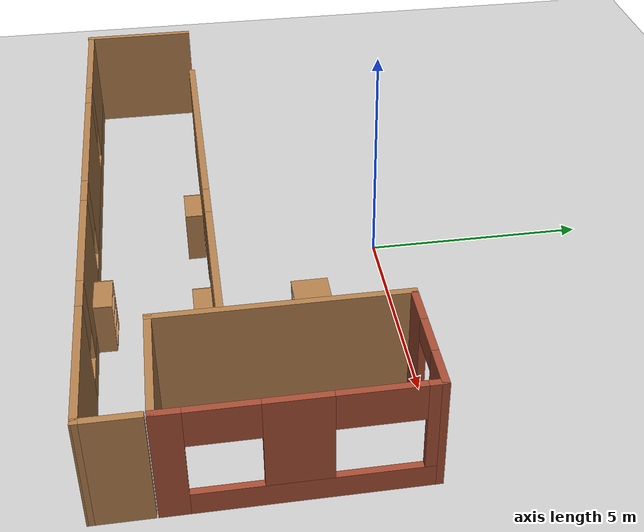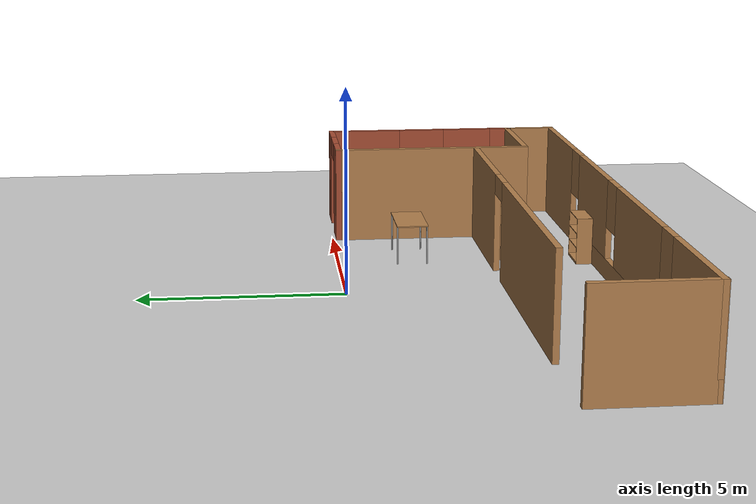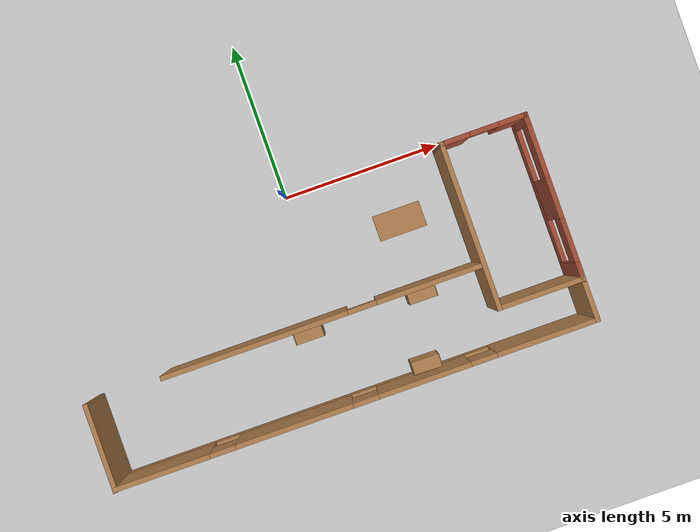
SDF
<sdf version="1.6">
 <world name="default">
  <model name="ground_plane">
   <static>1</static>
   <link name="link">
    <collision name="collision">
     <geometry><plane><normal>0 0 1</normal><size>100 100</size></plane></geometry>
     <surface>
      <contact><collide_bitmask>65535</collide_bitmask></contact>
      <friction><ode><mu>100</mu><mu2>50</mu2></ode></friction>
     </surface>
    </collision>
    <visual name="visual">
     <cast_shadows>0</cast_shadows>
     <geometry><plane><normal>0 0 1</normal><size>100 100</size></plane></geometry>
     <material>
      <script><uri>file://media/materials/scripts/gazebo.material</uri><name>Gazebo/Grey</name></script>
     </material>
    </visual>
   </link>
  </model>
  <model name="turtlebot3_house">
   <pose>0.006915 0.007382 0 0 -0 0</pose>
   <link name="Wall_106">
    <pose>6.2 -0.175 0 0 -0 0</pose>
    <visual name="Wall_106_Visual_1">
     <pose>0.922235 0 1.25 0 -0 0</pose>
     <geometry><box><size>0.905529 0.15 2.5</size></box></geometry>
     <material>
      <script><uri>file://media/materials/scripts/gazebo.material</uri><name>Gazebo/Bricks</name></script>
      <ambient>1 1 1 1</ambient>
      <diffuse>1 1 1 1</diffuse>
      <specular>0.2 0.2 0.2 1</specular>
      <emissive>0 0 0 1</emissive>
     </material>
    </visual>
    <visual name="Wall_106_Visual_2">
     <pose>0.019471 0 2.25 0 -0 0</pose>
     <geometry><box><size>0.9 0.15 0.5</size></box></geometry>
     <material>
      <script><uri>file://media/materials/scripts/gazebo.material</uri><name>Gazebo/Bricks</name></script>
      <ambient>1 1 1 1</ambient>
      <diffuse>1 1 1 1</diffuse>
      <specular>0.2 0.2 0.2 1</specular>
      <emissive>0 0 0 1</emissive>
     </material>
    </visual>
    <visual name="Wall_106_Visual_0">
     <pose>-0.902765 0 1.25 0 -0 0</pose>
     <geometry><box><size>0.944471 0.15 2.5</size></box></geometry>
     <material>
      <script><uri>file://media/materials/scripts/gazebo.material</uri><name>Gazebo/Bricks</name></script>
      <ambient>1 1 1 1</ambient>
      <diffuse>1 1 1 1</diffuse>
      <specular>0.2 0.2 0.2 1</specular>
      <emissive>0 0 0 1</emissive>
     </material>
    </visual>
    <collision name="Wall_106_Collision_1">
     <pose>0.922235 0 1.25 0 -0 0</pose>
     <geometry><box><size>0.905529 0.15 2.5</size></box></geometry>
     <surface>
      <friction>
       <ode><mu>1</mu><mu2>1</mu2><fdir1>0 0 0</fdir1><slip1>0</slip1><slip2>0</slip2></ode>
       <torsional>
        <coefficient>1</coefficient>
        <patch_radius>0</patch_radius>
        <surface_radius>0</surface_radius>
        <use_patch_radius>1</use_patch_radius>
        <ode><slip>0</slip></ode>
       </torsional>
      </friction>
      <bounce><restitution_coefficient>0</restitution_coefficient><threshold>1e+06</threshold></bounce>
      <contact>
       <collide_without_contact>0</collide_without_contact>
       <collide_without_contact_bitmask>1</collide_without_contact_bitmask>
       <collide_bitmask>1</collide_bitmask>
       <ode>
        <soft_cfm>0</soft_cfm>
        <soft_erp>0.2</soft_erp>
        <kp>1e+13</kp>
        <kd>1</kd>
        <max_vel>0.01</max_vel>
        <min_depth>0</min_depth>
       </ode>
       <bullet>
        <split_impulse>1</split_impulse>
        <split_impulse_penetration_threshold>-0.01</split_impulse_penetration_threshold>
        <soft_cfm>0</soft_cfm>
        <soft_erp>0.2</soft_erp>
        <kp>1e+13</kp>
        <kd>1</kd>
       </bullet>
      </contact>
     </surface>
    </collision>
    <collision name="Wall_106_Collision_0">
     <pose>-0.902765 0 1.25 0 -0 0</pose>
     <geometry><box><size>0.944471 0.15 2.5</size></box></geometry>
     <surface>
      <friction>
       <ode><mu>1</mu><mu2>1</mu2><fdir1>0 0 0</fdir1><slip1>0</slip1><slip2>0</slip2></ode>
       <torsional>
        <coefficient>1</coefficient>
        <patch_radius>0</patch_radius>
        <surface_radius>0</surface_radius>
        <use_patch_radius>1</use_patch_radius>
        <ode><slip>0</slip></ode>
       </torsional>
      </friction>
      <bounce><restitution_coefficient>0</restitution_coefficient><threshold>1e+06</threshold></bounce>
      <contact>
       <collide_without_contact>0</collide_without_contact>
       <collide_without_contact_bitmask>1</collide_without_contact_bitmask>
       <collide_bitmask>1</collide_bitmask>
       <ode>
        <soft_cfm>0</soft_cfm>
        <soft_erp>0.2</soft_erp>
        <kp>1e+13</kp>
        <kd>1</kd>
        <max_vel>0.01</max_vel>
        <min_depth>0</min_depth>
       </ode>
       <bullet>
        <split_impulse>1</split_impulse>
        <split_impulse_penetration_threshold>-0.01</split_impulse_penetration_threshold>
        <soft_cfm>0</soft_cfm>
        <soft_erp>0.2</soft_erp>
        <kp>1e+13</kp>
        <kd>1</kd>
       </bullet>
      </contact>
     </surface>
    </collision>
    <collision name="Wall_106_Collision_2">
     <pose>0.019471 0 2.25 0 -0 0</pose>
     <geometry><box><size>0.9 0.15 0.5</size></box></geometry>
     <surface>
      <friction>
       <ode><mu>1</mu><mu2>1</mu2><fdir1>0 0 0</fdir1><slip1>0</slip1><slip2>0</slip2></ode>
       <torsional>
        <coefficient>1</coefficient>
        <patch_radius>0</patch_radius>
        <surface_radius>0</surface_radius>
        <use_patch_radius>1</use_patch_radius>
        <ode><slip>0</slip></ode>
       </torsional>
      </friction>
      <bounce><restitution_coefficient>0</restitution_coefficient><threshold>1e+06</threshold></bounce>
      <contact>
       <collide_without_contact>0</collide_without_contact>
       <collide_without_contact_bitmask>1</collide_without_contact_bitmask>
       <collide_bitmask>1</collide_bitmask>
       <ode>
        <soft_cfm>0</soft_cfm>
        <soft_erp>0.2</soft_erp>
        <kp>1e+13</kp>
        <kd>1</kd>
        <max_vel>0.01</max_vel>
        <min_depth>0</min_depth>
       </ode>
       <bullet>
        <split_impulse>1</split_impulse>
        <split_impulse_penetration_threshold>-0.01</split_impulse_penetration_threshold>
        <soft_cfm>0</soft_cfm>
        <soft_erp>0.2</soft_erp>
        <kp>1e+13</kp>
        <kd>1</kd>
       </bullet>
      </contact>
     </surface>
    </collision>
   </link>
   <link name="Wall_93">
    <pose>4.9 -2.725 0 0 0 -1.5708</pose>
    <visual name="Wall_93_Visual">
     <pose>0 0 1.25 0 -0 0</pose>
     <geometry><box><size>5.25 0.15 2.5</size></box></geometry>
     <material>
      <script><uri>file://media/materials/scripts/gazebo.material</uri><name>Gazebo/Wood</name></script>
      <ambient>1 1 1 1</ambient>
      <diffuse>1 1 1 1</diffuse>
      <specular>0.2 0.2 0.2 1</specular>
      <emissive>0 0 0 1</emissive>
     </material>
    </visual>
    <collision name="Wall_93_Collision">
     <pose>0 0 1.25 0 -0 0</pose>
     <geometry><box><size>5.25 0.15 2.5</size></box></geometry>
     <surface>
      <friction>
       <ode><mu>1</mu><mu2>1</mu2><fdir1>0 0 0</fdir1><slip1>0</slip1><slip2>0</slip2></ode>
       <torsional>
        <coefficient>1</coefficient>
        <patch_radius>0</patch_radius>
        <surface_radius>0</surface_radius>
        <use_patch_radius>1</use_patch_radius>
        <ode><slip>0</slip></ode>
       </torsional>
      </friction>
      <bounce><restitution_coefficient>0</restitution_coefficient><threshold>1e+06</threshold></bounce>
      <contact>
       <collide_without_contact>0</collide_without_contact>
       <collide_without_contact_bitmask>1</collide_without_contact_bitmask>
       <collide_bitmask>1</collide_bitmask>
       <ode>
        <soft_cfm>0</soft_cfm>
        <soft_erp>0.2</soft_erp>
        <kp>1e+13</kp>
        <kd>1</kd>
        <max_vel>0.01</max_vel>
        <min_depth>0</min_depth>
       </ode>
       <bullet>
        <split_impulse>1</split_impulse>
        <split_impulse_penetration_threshold>-0.01</split_impulse_penetration_threshold>
        <soft_cfm>0</soft_cfm>
        <soft_erp>0.2</soft_erp>
        <kp>1e+13</kp>
        <kd>1</kd>
       </bullet>
      </contact>
     </surface>
    </collision>
   </link>
   <link name="Wall_94">
    <pose>6.2 -5.275 0 0 -0 0</pose>
    <visual name="Wall_94_Visual">
     <pose>0 0 1.25 0 -0 0</pose>
     <geometry><box><size>2.75 0.15 2.5</size></box></geometry>
     <material>
      <script><uri>file://media/materials/scripts/gazebo.material</uri><name>Gazebo/Wood</name></script>
      <ambient>1 1 1 1</ambient>
      <diffuse>1 1 1 1</diffuse>
      <specular>0.2 0.2 0.2 1</specular>
      <emissive>0 0 0 1</emissive>
     </material>
    </visual>
    <collision name="Wall_94_Collision">
     <pose>0 0 1.25 0 -0 0</pose>
     <geometry><box><size>2.75 0.15 2.5</size></box></geometry>
     <surface>
      <friction>
       <ode><mu>1</mu><mu2>1</mu2><fdir1>0 0 0</fdir1><slip1>0</slip1><slip2>0</slip2></ode>
       <torsional>
        <coefficient>1</coefficient>
        <patch_radius>0</patch_radius>
        <surface_radius>0</surface_radius>
        <use_patch_radius>1</use_patch_radius>
        <ode><slip>0</slip></ode>
       </torsional>
      </friction>
      <bounce><restitution_coefficient>0</restitution_coefficient><threshold>1e+06</threshold></bounce>
      <contact>
       <collide_without_contact>0</collide_without_contact>
       <collide_without_contact_bitmask>1</collide_without_contact_bitmask>
       <collide_bitmask>1</collide_bitmask>
       <ode>
        <soft_cfm>0</soft_cfm>
        <soft_erp>0.2</soft_erp>
        <kp>1e+13</kp>
        <kd>1</kd>
        <max_vel>0.01</max_vel>
        <min_depth>0</min_depth>
       </ode>
       <bullet>
        <split_impulse>1</split_impulse>
        <split_impulse_penetration_threshold>-0.01</split_impulse_penetration_threshold>
        <soft_cfm>0</soft_cfm>
        <soft_erp>0.2</soft_erp>
        <kp>1e+13</kp>
        <kd>1</kd>
       </bullet>
      </contact>
     </surface>
    </collision>
   </link>
   <link name="Wall_95">
    <pose>7.5 -2.725 0 0 -0 1.5708</pose>
    <visual name="Wall_95_Visual_1">
     <pose>0.295715 0 0.25 0 -0 0</pose>
     <geometry><box><size>4.65857 0.15 0.5</size></box></geometry>
     <material>
      <script><uri>file://media/materials/scripts/gazebo.material</uri><name>Gazebo/Bricks</name></script>
      <ambient>1 1 1 1</ambient>
      <diffuse>1 1 1 1</diffuse>
      <specular>0.2 0.2 0.2 1</specular>
      <emissive>0 0 0 1</emissive>
     </material>
    </visual>
    <visual name="Wall_95_Visual_2">
     <pose>-0.036959 0 1.5 0 -0 0</pose>
     <geometry><box><size>1.27522 0.15 2</size></box></geometry>
     <material>
      <script><uri>file://media/materials/scripts/gazebo.material</uri><name>Gazebo/Bricks</name></script>
      <ambient>1 1 1 1</ambient>
      <diffuse>1 1 1 1</diffuse>
      <specular>0.2 0.2 0.2 1</specular>
      <emissive>0 0 0 1</emissive>
     </material>
    </visual>
    <visual name="Wall_95_Visual_3">
     <pose>2.43783 0 1.5 0 -0 0</pose>
     <geometry><box><size>0.374348 0.15 2</size></box></geometry>
     <material>
      <script><uri>file://media/materials/scripts/gazebo.material</uri><name>Gazebo/Bricks</name></script>
      <ambient>1 1 1 1</ambient>
      <diffuse>1 1 1 1</diffuse>
      <specular>0.2 0.2 0.2 1</specular>
      <emissive>0 0 0 1</emissive>
     </material>
    </visual>
    <visual name="Wall_95_Visual_5">
     <pose>1.42565 0 2.1 0 -0 0</pose>
     <geometry><box><size>1.65 0.15 0.8</size></box></geometry>
     <material>
      <script><uri>file://media/materials/scripts/gazebo.material</uri><name>Gazebo/Bricks</name></script>
      <ambient>1 1 1 1</ambient>
      <diffuse>1 1 1 1</diffuse>
      <specular>0.2 0.2 0.2 1</specular>
      <emissive>0 0 0 1</emissive>
     </material>
    </visual>
    <visual name="Wall_95_Visual_4">
     <pose>-1.35407 0 2.1 0 -0 0</pose>
     <geometry><box><size>1.359 0.15 0.8</size></box></geometry>
     <material>
      <script><uri>file://media/materials/scripts/gazebo.material</uri><name>Gazebo/Bricks</name></script>
      <ambient>1 1 1 1</ambient>
      <diffuse>1 1 1 1</diffuse>
      <specular>0.2 0.2 0.2 1</specular>
      <emissive>0 0 0 1</emissive>
     </material>
    </visual>
    <visual name="Wall_95_Visual_0">
     <pose>-2.32929 0 1.25 0 -0 0</pose>
     <geometry><box><size>0.591431 0.15 2.5</size></box></geometry>
     <material>
      <script><uri>file://media/materials/scripts/gazebo.material</uri><name>Gazebo/Bricks</name></script>
      <ambient>1 1 1 1</ambient>
      <diffuse>1 1 1 1</diffuse>
      <specular>0.2 0.2 0.2 1</specular>
      <emissive>0 0 0 1</emissive>
     </material>
    </visual>
    <collision name="Wall_95_Collision_2">
     <pose>-0.036959 0 1.5 0 -0 0</pose>
     <geometry><box><size>1.27522 0.15 2</size></box></geometry>
     <surface>
      <friction>
       <ode><mu>1</mu><mu2>1</mu2><fdir1>0 0 0</fdir1><slip1>0</slip1><slip2>0</slip2></ode>
       <torsional>
        <coefficient>1</coefficient>
        <patch_radius>0</patch_radius>
        <surface_radius>0</surface_radius>
        <use_patch_radius>1</use_patch_radius>
        <ode><slip>0</slip></ode>
       </torsional>
      </friction>
      <bounce><restitution_coefficient>0</restitution_coefficient><threshold>1e+06</threshold></bounce>
      <contact>
       <collide_without_contact>0</collide_without_contact>
       <collide_without_contact_bitmask>1</collide_without_contact_bitmask>
       <collide_bitmask>1</collide_bitmask>
       <ode>
        <soft_cfm>0</soft_cfm>
        <soft_erp>0.2</soft_erp>
        <kp>1e+13</kp>
        <kd>1</kd>
        <max_vel>0.01</max_vel>
        <min_depth>0</min_depth>
       </ode>
       <bullet>
        <split_impulse>1</split_impulse>
        <split_impulse_penetration_threshold>-0.01</split_impulse_penetration_threshold>
        <soft_cfm>0</soft_cfm>
        <soft_erp>0.2</soft_erp>
        <kp>1e+13</kp>
        <kd>1</kd>
       </bullet>
      </contact>
     </surface>
    </collision>
    <collision name="Wall_95_Collision_3">
     <pose>2.43783 0 1.5 0 -0 0</pose>
     <geometry><box><size>0.374348 0.15 2</size></box></geometry>
     <surface>
      <friction>
       <ode><mu>1</mu><mu2>1</mu2><fdir1>0 0 0</fdir1><slip1>0</slip1><slip2>0</slip2></ode>
       <torsional>
        <coefficient>1</coefficient>
        <patch_radius>0</patch_radius>
        <surface_radius>0</surface_radius>
        <use_patch_radius>1</use_patch_radius>
        <ode><slip>0</slip></ode>
       </torsional>
      </friction>
      <bounce><restitution_coefficient>0</restitution_coefficient><threshold>1e+06</threshold></bounce>
      <contact>
       <collide_without_contact>0</collide_without_contact>
       <collide_without_contact_bitmask>1</collide_without_contact_bitmask>
       <collide_bitmask>1</collide_bitmask>
       <ode>
        <soft_cfm>0</soft_cfm>
        <soft_erp>0.2</soft_erp>
        <kp>1e+13</kp>
        <kd>1</kd>
        <max_vel>0.01</max_vel>
        <min_depth>0</min_depth>
       </ode>
       <bullet>
        <split_impulse>1</split_impulse>
        <split_impulse_penetration_threshold>-0.01</split_impulse_penetration_threshold>
        <soft_cfm>0</soft_cfm>
        <soft_erp>0.2</soft_erp>
        <kp>1e+13</kp>
        <kd>1</kd>
       </bullet>
      </contact>
     </surface>
    </collision>
    <collision name="Wall_95_Collision_5">
     <pose>1.42565 0 2.1 0 -0 0</pose>
     <geometry><box><size>1.65 0.15 0.8</size></box></geometry>
     <surface>
      <friction>
       <ode><mu>1</mu><mu2>1</mu2><fdir1>0 0 0</fdir1><slip1>0</slip1><slip2>0</slip2></ode>
       <torsional>
        <coefficient>1</coefficient>
        <patch_radius>0</patch_radius>
        <surface_radius>0</surface_radius>
        <use_patch_radius>1</use_patch_radius>
        <ode><slip>0</slip></ode>
       </torsional>
      </friction>
      <bounce><restitution_coefficient>0</restitution_coefficient><threshold>1e+06</threshold></bounce>
      <contact>
       <collide_without_contact>0</collide_without_contact>
       <collide_without_contact_bitmask>1</collide_without_contact_bitmask>
       <collide_bitmask>1</collide_bitmask>
       <ode>
        <soft_cfm>0</soft_cfm>
        <soft_erp>0.2</soft_erp>
        <kp>1e+13</kp>
        <kd>1</kd>
        <max_vel>0.01</max_vel>
        <min_depth>0</min_depth>
       </ode>
       <bullet>
        <split_impulse>1</split_impulse>
        <split_impulse_penetration_threshold>-0.01</split_impulse_penetration_threshold>
        <soft_cfm>0</soft_cfm>
        <soft_erp>0.2</soft_erp>
        <kp>1e+13</kp>
        <kd>1</kd>
       </bullet>
      </contact>
     </surface>
    </collision>
    <collision name="Wall_95_Collision_0">
     <pose>-2.32929 0 1.25 0 -0 0</pose>
     <geometry><box><size>0.591431 0.15 2.5</size></box></geometry>
     <surface>
      <friction>
       <ode><mu>1</mu><mu2>1</mu2><fdir1>0 0 0</fdir1><slip1>0</slip1><slip2>0</slip2></ode>
       <torsional>
        <coefficient>1</coefficient>
        <patch_radius>0</patch_radius>
        <surface_radius>0</surface_radius>
        <use_patch_radius>1</use_patch_radius>
        <ode><slip>0</slip></ode>
       </torsional>
      </friction>
      <bounce><restitution_coefficient>0</restitution_coefficient><threshold>1e+06</threshold></bounce>
      <contact>
       <collide_without_contact>0</collide_without_contact>
       <collide_without_contact_bitmask>1</collide_without_contact_bitmask>
       <collide_bitmask>1</collide_bitmask>
       <ode>
        <soft_cfm>0</soft_cfm>
        <soft_erp>0.2</soft_erp>
        <kp>1e+13</kp>
        <kd>1</kd>
        <max_vel>0.01</max_vel>
        <min_depth>0</min_depth>
       </ode>
       <bullet>
        <split_impulse>1</split_impulse>
        <split_impulse_penetration_threshold>-0.01</split_impulse_penetration_threshold>
        <soft_cfm>0</soft_cfm>
        <soft_erp>0.2</soft_erp>
        <kp>1e+13</kp>
        <kd>1</kd>
       </bullet>
      </contact>
     </surface>
    </collision>
    <collision name="Wall_95_Collision_1">
     <pose>0.295715 0 0.25 0 -0 0</pose>
     <geometry><box><size>4.65857 0.15 0.5</size></box></geometry>
     <surface>
      <friction>
       <ode><mu>1</mu><mu2>1</mu2><fdir1>0 0 0</fdir1><slip1>0</slip1><slip2>0</slip2></ode>
       <torsional>
        <coefficient>1</coefficient>
        <patch_radius>0</patch_radius>
        <surface_radius>0</surface_radius>
        <use_patch_radius>1</use_patch_radius>
        <ode><slip>0</slip></ode>
       </torsional>
      </friction>
      <bounce><restitution_coefficient>0</restitution_coefficient><threshold>1e+06</threshold></bounce>
      <contact>
       <collide_without_contact>0</collide_without_contact>
       <collide_without_contact_bitmask>1</collide_without_contact_bitmask>
       <collide_bitmask>1</collide_bitmask>
       <ode>
        <soft_cfm>0</soft_cfm>
        <soft_erp>0.2</soft_erp>
        <kp>1e+13</kp>
        <kd>1</kd>
        <max_vel>0.01</max_vel>
        <min_depth>0</min_depth>
       </ode>
       <bullet>
        <split_impulse>1</split_impulse>
        <split_impulse_penetration_threshold>-0.01</split_impulse_penetration_threshold>
        <soft_cfm>0</soft_cfm>
        <soft_erp>0.2</soft_erp>
        <kp>1e+13</kp>
        <kd>1</kd>
       </bullet>
      </contact>
     </surface>
    </collision>
    <collision name="Wall_95_Collision_4">
     <pose>-1.35407 0 2.1 0 -0 0</pose>
     <geometry><box><size>1.359 0.15 0.8</size></box></geometry>
     <surface>
      <friction>
       <ode><mu>1</mu><mu2>1</mu2><fdir1>0 0 0</fdir1><slip1>0</slip1><slip2>0</slip2></ode>
       <torsional>
        <coefficient>1</coefficient>
        <patch_radius>0</patch_radius>
        <surface_radius>0</surface_radius>
        <use_patch_radius>1</use_patch_radius>
        <ode><slip>0</slip></ode>
       </torsional>
      </friction>
      <bounce><restitution_coefficient>0</restitution_coefficient><threshold>1e+06</threshold></bounce>
      <contact>
       <collide_without_contact>0</collide_without_contact>
       <collide_without_contact_bitmask>1</collide_without_contact_bitmask>
       <collide_bitmask>1</collide_bitmask>
       <ode>
        <soft_cfm>0</soft_cfm>
        <soft_erp>0.2</soft_erp>
        <kp>1e+13</kp>
        <kd>1</kd>
        <max_vel>0.01</max_vel>
        <min_depth>0</min_depth>
       </ode>
       <bullet>
        <split_impulse>1</split_impulse>
        <split_impulse_penetration_threshold>-0.01</split_impulse_penetration_threshold>
        <soft_cfm>0</soft_cfm>
        <soft_erp>0.2</soft_erp>
        <kp>1e+13</kp>
        <kd>1</kd>
       </bullet>
      </contact>
     </surface>
    </collision>
   </link>
   <static>1</static>
  </model>
  <model name="test">
   <pose>-0.158987 -3.9109 0 0 -0 0</pose>
   <link name="Wall_1">
    <visual name="Wall_1_Visual_0">
     <pose>-2.08639 0 1.25 0 -0 0</pose>
     <geometry><box><size>5.82721 0.15 2.5</size></box></geometry>
     <material>
      <script><uri>file://media/materials/scripts/gazebo.material</uri><name>Gazebo/Wood</name></script>
      <ambient>1 1 1 1</ambient>
     </material>
     <meta><layer>0</layer></meta>
    </visual>
    <collision name="Wall_1_Collision_0">
     <geometry><box><size>5.82721 0.15 2.5</size></box></geometry>
     <pose>-2.08639 0 1.25 0 -0 0</pose>
    </collision>
    <visual name="Wall_1_Visual_1">
     <pose>3.36361 0 1.25 0 -0 0</pose>
     <geometry><box><size>3.27278 0.15 2.5</size></box></geometry>
     <material>
      <script><uri>file://media/materials/scripts/gazebo.material</uri><name>Gazebo/Wood</name></script>
      <ambient>1 1 1 1</ambient>
     </material>
     <meta><layer>0</layer></meta>
    </visual>
    <collision name="Wall_1_Collision_1">
     <geometry><box><size>3.27278 0.15 2.5</size></box></geometry>
     <pose>3.36361 0 1.25 0 -0 0</pose>
    </collision>
    <visual name="Wall_1_Visual_2">
     <pose>1.27721 0 2.25 0 -0 0</pose>
     <geometry><box><size>0.9 0.15 0.5</size></box></geometry>
     <material>
      <script><uri>file://media/materials/scripts/gazebo.material</uri><name>Gazebo/Wood</name></script>
      <ambient>1 1 1 1</ambient>
     </material>
     <meta><layer>0</layer></meta>
    </visual>
    <collision name="Wall_1_Collision_2">
     <geometry><box><size>0.9 0.15 0.5</size></box></geometry>
     <pose>1.27721 0 2.25 0 -0 0</pose>
    </collision>
   </link>
   <static>1</static>
  </model>
  <model name="test2">
   <pose>0.00355 -5.2502 0 0 -0 0</pose>
   <link name="Wall_10">
    <collision name="Wall_10_Collision">
     <geometry><box><size>1.25 0.15 2.5</size></box></geometry>
     <pose>0 0 1.25 0 -0 0</pose>
    </collision>
    <visual name="Wall_10_Visual">
     <pose>0 0 1.25 0 -0 0</pose>
     <geometry><box><size>1.25 0.15 2.5</size></box></geometry>
     <material>
      <script><uri>file://media/materials/scripts/gazebo.material</uri><name>Gazebo/Wood</name></script>
      <ambient>1 1 1 1</ambient>
     </material>
     <meta><layer>0</layer></meta>
    </visual>
    <pose>7.50104 -0.74334 0 0 -0 1.5708</pose>
   </link>
   <link name="Wall_6">
    <pose>0 -1.28906 0 0 -0 3.14102</pose>
    <visual name="Wall_6_Visual_0">
     <pose>-5.98072 0 1.25 0 -0 0</pose>
     <geometry><box><size>3.19069 0.15 2.5</size></box></geometry>
     <material>
      <script><uri>file://media/materials/scripts/gazebo.material</uri><name>Gazebo/Wood</name></script>
      <ambient>1 1 1 1</ambient>
     </material>
     <meta><layer>0</layer></meta>
    </visual>
    <collision name="Wall_6_Collision_0">
     <geometry><box><size>3.19069 0.15 2.5</size></box></geometry>
     <pose>-5.98072 0 1.25 0 -0 0</pose>
    </collision>
    <visual name="Wall_6_Visual_1">
     <pose>1.59535 0 0.25 0 -0 0</pose>
     <geometry><box><size>11.9614 0.15 0.5</size></box></geometry>
     <material>
      <script><uri>file://media/materials/scripts/gazebo.material</uri><name>Gazebo/Wood</name></script>
      <ambient>1 1 1 1</ambient>
     </material>
     <meta><layer>0</layer></meta>
    </visual>
    <collision name="Wall_6_Collision_1">
     <geometry><box><size>11.9614 0.15 0.5</size></box></geometry>
     <pose>1.59535 0 0.25 0 -0 0</pose>
    </collision>
    <visual name="Wall_6_Visual_2">
     <pose>-2.14508 0 1.5 0 -0 0</pose>
     <geometry><box><size>2.88059 0.15 2</size></box></geometry>
     <material>
      <script><uri>file://media/materials/scripts/gazebo.material</uri><name>Gazebo/Wood</name></script>
      <ambient>1 1 1 1</ambient>
     </material>
     <meta><layer>0</layer></meta>
    </visual>
    <collision name="Wall_6_Collision_2">
     <geometry><box><size>2.88059 0.15 2</size></box></geometry>
     <pose>-2.14508 0 1.5 0 -0 0</pose>
    </collision>
    <visual name="Wall_6_Visual_3">
     <pose>1.92326 0 1.5 0 -0 0</pose>
     <geometry><box><size>3.65609 0.15 2</size></box></geometry>
     <material>
      <script><uri>file://media/materials/scripts/gazebo.material</uri><name>Gazebo/Wood</name></script>
      <ambient>1 1 1 1</ambient>
     </material>
     <meta><layer>0</layer></meta>
    </visual>
    <collision name="Wall_6_Collision_3">
     <geometry><box><size>3.65609 0.15 2</size></box></geometry>
     <pose>1.92326 0 1.5 0 -0 0</pose>
    </collision>
    <visual name="Wall_6_Visual_4">
     <pose>6.06369 0 1.5 0 -0 0</pose>
     <geometry><box><size>3.02476 0.15 2</size></box></geometry>
     <material>
      <script><uri>file://media/materials/scripts/gazebo.material</uri><name>Gazebo/Wood</name></script>
      <ambient>1 1 1 1</ambient>
     </material>
     <meta><layer>0</layer></meta>
    </visual>
    <collision name="Wall_6_Collision_4">
     <geometry><box><size>3.02476 0.15 2</size></box></geometry>
     <pose>6.06369 0 1.5 0 -0 0</pose>
    </collision>
    <visual name="Wall_6_Visual_5">
     <pose>-3.98538 0 1.9 0 -0 0</pose>
     <geometry><box><size>0.8 0.15 1.2</size></box></geometry>
     <material>
      <script><uri>file://media/materials/scripts/gazebo.material</uri><name>Gazebo/Wood</name></script>
      <ambient>1 1 1 1</ambient>
     </material>
     <meta><layer>0</layer></meta>
    </visual>
    <collision name="Wall_6_Collision_5">
     <geometry><box><size>0.8 0.15 1.2</size></box></geometry>
     <pose>-3.98538 0 1.9 0 -0 0</pose>
    </collision>
    <visual name="Wall_6_Visual_6">
     <pose>-0.304791 0 1.9 0 -0 0</pose>
     <geometry><box><size>0.8 0.15 1.2</size></box></geometry>
     <material>
      <script><uri>file://media/materials/scripts/gazebo.material</uri><name>Gazebo/Wood</name></script>
      <ambient>1 1 1 1</ambient>
     </material>
     <meta><layer>0</layer></meta>
    </visual>
    <collision name="Wall_6_Collision_6">
     <geometry><box><size>0.8 0.15 1.2</size></box></geometry>
     <pose>-0.304791 0 1.9 0 -0 0</pose>
    </collision>
    <visual name="Wall_6_Visual_7">
     <pose>4.1513 0 1.9 0 -0 0</pose>
     <geometry><box><size>0.8 0.15 1.2</size></box></geometry>
     <material>
      <script><uri>file://media/materials/scripts/gazebo.material</uri><name>Gazebo/Wood</name></script>
      <ambient>1 1 1 1</ambient>
     </material>
     <meta><layer>0</layer></meta>
    </visual>
    <collision name="Wall_6_Collision_7">
     <geometry><box><size>0.8 0.15 1.2</size></box></geometry>
     <pose>4.1513 0 1.9 0 -0 0</pose>
    </collision>
   </link>
   <link name="Wall_8">
    <collision name="Wall_8_Collision">
     <geometry><box><size>2.75 0.15 2.5</size></box></geometry>
     <pose>0 0 1.25 0 -0 0</pose>
    </collision>
    <visual name="Wall_8_Visual">
     <pose>0 0 1.25 0 -0 0</pose>
     <geometry><box><size>2.75 0.15 2.5</size></box></geometry>
     <material>
      <script><uri>file://media/materials/scripts/gazebo.material</uri><name>Gazebo/Wood</name></script>
      <ambient>1 1 1 1</ambient>
     </material>
     <meta><layer>0</layer></meta>
    </visual>
    <pose>-7.50104 0 0 0 -0 1.5708</pose>
   </link>
   <static>1</static>
  </model>
  <model name="table">
   <static>1</static>
   <link name="link">
    <collision name="surface">
     <pose>0 0 1 0 -0 0</pose>
     <geometry><box><size>1.5 0.8 0.03</size></box></geometry>
     <surface><friction><ode><mu>0.6</mu><mu2>0.6</mu2></ode></friction></surface>
    </collision>
    <visual name="visual1">
     <pose>0 0 1 0 -0 0</pose>
     <geometry><box><size>1.5 0.8 0.03</size></box></geometry>
     <material>
      <script><uri>file://media/materials/scripts/gazebo.material</uri><name>Gazebo/Wood</name></script>
     </material>
    </visual>
    <collision name="front_left_leg">
     <pose>0.68 0.38 0.5 0 -0 0</pose>
     <geometry><cylinder><radius>0.02</radius><length>1</length></cylinder></geometry>
    </collision>
    <visual name="front_left_leg">
     <pose>0.68 0.38 0.5 0 -0 0</pose>
     <geometry><cylinder><radius>0.02</radius><length>1</length></cylinder></geometry>
     <material>
      <script><uri>file://media/materials/scripts/gazebo.material</uri><name>Gazebo/Grey</name></script>
     </material>
    </visual>
    <collision name="front_right_leg">
     <pose>0.68 -0.38 0.5 0 -0 0</pose>
     <geometry><cylinder><radius>0.02</radius><length>1</length></cylinder></geometry>
    </collision>
    <visual name="front_right_leg">
     <pose>0.68 -0.38 0.5 0 -0 0</pose>
     <geometry><cylinder><radius>0.02</radius><length>1</length></cylinder></geometry>
     <material>
      <script><uri>file://media/materials/scripts/gazebo.material</uri><name>Gazebo/Grey</name></script>
     </material>
    </visual>
    <collision name="back_right_leg">
     <pose>-0.68 -0.38 0.5 0 -0 0</pose>
     <geometry><cylinder><radius>0.02</radius><length>1</length></cylinder></geometry>
    </collision>
    <visual name="back_right_leg">
     <pose>-0.68 -0.38 0.5 0 -0 0</pose>
     <geometry><cylinder><radius>0.02</radius><length>1</length></cylinder></geometry>
     <material>
      <script><uri>file://media/materials/scripts/gazebo.material</uri><name>Gazebo/Grey</name></script>
     </material>
    </visual>
    <collision name="back_left_leg">
     <pose>-0.68 0.38 0.5 0 -0 0</pose>
     <geometry><cylinder><radius>0.02</radius><length>1</length></cylinder></geometry>
    </collision>
    <visual name="back_left_leg">
     <pose>-0.68 0.38 0.5 0 -0 0</pose>
     <geometry><cylinder><radius>0.02</radius><length>1</length></cylinder></geometry>
     <material>
      <script><uri>file://media/materials/scripts/gazebo.material</uri><name>Gazebo/Grey</name></script>
     </material>
    </visual>
   </link>
   <pose>3.07176 -1.8755 0 0 -0 0</pose>
  </model>
  <model name="bookshelf_3">
   <static>1</static>
   <link name="link">
    <inertial><mass>1</mass></inertial>
    <collision name="back">
     <pose>0 0.005 0.6 0 -0 0</pose>
     <geometry><box><size>0.9 0.01 1.2</size></box></geometry>
    </collision>
    <visual name="visual1">
     <pose>0 0.005 0.6 0 -0 0</pose>
     <geometry><box><size>0.9 0.01 1.2</size></box></geometry>
     <material>
      <script><uri>file://media/materials/scripts/gazebo.material</uri><name>Gazebo/Wood</name></script>
     </material>
    </visual>
    <collision name="left_side">
     <pose>0.45 -0.195 0.6 0 -0 0</pose>
     <geometry><box><size>0.02 0.4 1.2</size></box></geometry>
    </collision>
    <visual name="visual2">
     <pose>0.45 -0.195 0.6 0 -0 0</pose>
     <geometry><box><size>0.02 0.4 1.2</size></box></geometry>
     <material>
      <script><uri>file://media/materials/scripts/gazebo.material</uri><name>Gazebo/Wood</name></script>
     </material>
    </visual>
    <collision name="right_side">
     <pose>-0.45 -0.195 0.6 0 -0 0</pose>
     <geometry><box><size>0.02 0.4 1.2</size></box></geometry>
    </collision>
    <visual name="visual3">
     <pose>-0.45 -0.195 0.6 0 -0 0</pose>
     <geometry><box><size>0.02 0.4 1.2</size></box></geometry>
     <material>
      <script><uri>file://media/materials/scripts/gazebo.material</uri><name>Gazebo/Wood</name></script>
     </material>
    </visual>
    <collision name="bottom">
     <pose>0 -0.195 0.03 0 -0 0</pose>
     <geometry><box><size>0.88 0.4 0.06</size></box></geometry>
    </collision>
    <visual name="visual4">
     <pose>0 -0.195 0.03 0 -0 0</pose>
     <geometry><box><size>0.88 0.4 0.06</size></box></geometry>
     <material>
      <script><uri>file://media/materials/scripts/gazebo.material</uri><name>Gazebo/Wood</name></script>
     </material>
    </visual>
    <collision name="top">
     <pose>0 -0.195 1.19 0 -0 0</pose>
     <geometry><box><size>0.88 0.4 0.02</size></box></geometry>
    </collision>
    <visual name="visual5">
     <pose>0 -0.195 1.19 0 -0 0</pose>
     <geometry><box><size>0.88 0.4 0.02</size></box></geometry>
     <material>
      <script><uri>file://media/materials/scripts/gazebo.material</uri><name>Gazebo/Wood</name></script>
     </material>
    </visual>
    <collision name="low_shelf">
     <pose>0 -0.195 0.43 0 -0 0</pose>
     <geometry><box><size>0.88 0.4 0.02</size></box></geometry>
    </collision>
    <visual name="visual6">
     <pose>0 -0.195 0.43 0 -0 0</pose>
     <geometry><box><size>0.88 0.4 0.02</size></box></geometry>
     <material>
      <script><uri>file://media/materials/scripts/gazebo.material</uri><name>Gazebo/Wood</name></script>
     </material>
    </visual>
    <collision name="high_shelf">
     <pose>0 -0.195 0.8 0 -0 0</pose>
     <geometry><box><size>0.88 0.4 0.02</size></box></geometry>
    </collision>
    <visual name="visual7">
     <pose>0 -0.195 0.8 0 -0 0</pose>
     <geometry><box><size>0.88 0.4 0.02</size></box></geometry>
     <material>
      <script><uri>file://media/materials/scripts/gazebo.material</uri><name>Gazebo/Wood</name></script>
     </material>
    </visual>
   </link>
   <pose>2.9653 -4.00032 0 0 -0 0</pose>
  </model>
  <model name="bookshelf_4">
   <static>1</static>
   <link name="link">
    <inertial><mass>1</mass></inertial>
    <collision name="back">
     <pose>0 0.005 0.6 0 -0 0</pose>
     <geometry><box><size>0.9 0.01 1.2</size></box></geometry>
    </collision>
    <visual name="visual1">
     <pose>0 0.005 0.6 0 -0 0</pose>
     <geometry><box><size>0.9 0.01 1.2</size></box></geometry>
     <material>
      <script><uri>file://media/materials/scripts/gazebo.material</uri><name>Gazebo/Wood</name></script>
     </material>
    </visual>
    <collision name="left_side">
     <pose>0.45 -0.195 0.6 0 -0 0</pose>
     <geometry><box><size>0.02 0.4 1.2</size></box></geometry>
    </collision>
    <visual name="visual2">
     <pose>0.45 -0.195 0.6 0 -0 0</pose>
     <geometry><box><size>0.02 0.4 1.2</size></box></geometry>
     <material>
      <script><uri>file://media/materials/scripts/gazebo.material</uri><name>Gazebo/Wood</name></script>
     </material>
    </visual>
    <collision name="right_side">
     <pose>-0.45 -0.195 0.6 0 -0 0</pose>
     <geometry><box><size>0.02 0.4 1.2</size></box></geometry>
    </collision>
    <visual name="visual3">
     <pose>-0.45 -0.195 0.6 0 -0 0</pose>
     <geometry><box><size>0.02 0.4 1.2</size></box></geometry>
     <material>
      <script><uri>file://media/materials/scripts/gazebo.material</uri><name>Gazebo/Wood</name></script>
     </material>
    </visual>
    <collision name="bottom">
     <pose>0 -0.195 0.03 0 -0 0</pose>
     <geometry><box><size>0.88 0.4 0.06</size></box></geometry>
    </collision>
    <visual name="visual4">
     <pose>0 -0.195 0.03 0 -0 0</pose>
     <geometry><box><size>0.88 0.4 0.06</size></box></geometry>
     <material>
      <script><uri>file://media/materials/scripts/gazebo.material</uri><name>Gazebo/Wood</name></script>
     </material>
    </visual>
    <collision name="top">
     <pose>0 -0.195 1.19 0 -0 0</pose>
     <geometry><box><size>0.88 0.4 0.02</size></box></geometry>
    </collision>
    <visual name="visual5">
     <pose>0 -0.195 1.19 0 -0 0</pose>
     <geometry><box><size>0.88 0.4 0.02</size></box></geometry>
     <material>
      <script><uri>file://media/materials/scripts/gazebo.material</uri><name>Gazebo/Wood</name></script>
     </material>
    </visual>
    <collision name="low_shelf">
     <pose>0 -0.195 0.43 0 -0 0</pose>
     <geometry><box><size>0.88 0.4 0.02</size></box></geometry>
    </collision>
    <visual name="visual6">
     <pose>0 -0.195 0.43 0 -0 0</pose>
     <geometry><box><size>0.88 0.4 0.02</size></box></geometry>
     <material>
      <script><uri>file://media/materials/scripts/gazebo.material</uri><name>Gazebo/Wood</name></script>
     </material>
    </visual>
    <collision name="high_shelf">
     <pose>0 -0.195 0.8 0 -0 0</pose>
     <geometry><box><size>0.88 0.4 0.02</size></box></geometry>
    </collision>
    <visual name="visual7">
     <pose>0 -0.195 0.8 0 -0 0</pose>
     <geometry><box><size>0.88 0.4 0.02</size></box></geometry>
     <material>
      <script><uri>file://media/materials/scripts/gazebo.material</uri><name>Gazebo/Wood</name></script>
     </material>
    </visual>
   </link>
   <pose>-0.691662 -4.01045 0 0 -0 0</pose>
  </model>
  <model name="bookshelf_8">
   <static>1</static>
   <link name="link">
    <inertial><mass>1</mass></inertial>
    <collision name="back">
     <pose>0 0.005 0.6 0 -0 0</pose>
     <geometry><box><size>0.9 0.01 1.2</size></box></geometry>
    </collision>
    <visual name="visual1">
     <pose>0 0.005 0.6 0 -0 0</pose>
     <geometry><box><size>0.9 0.01 1.2</size></box></geometry>
     <material>
      <script><uri>file://media/materials/scripts/gazebo.material</uri><name>Gazebo/Wood</name></script>
     </material>
    </visual>
    <collision name="left_side">
     <pose>0.45 -0.195 0.6 0 -0 0</pose>
     <geometry><box><size>0.02 0.4 1.2</size></box></geometry>
    </collision>
    <visual name="visual2">
     <pose>0.45 -0.195 0.6 0 -0 0</pose>
     <geometry><box><size>0.02 0.4 1.2</size></box></geometry>
     <material>
      <script><uri>file://media/materials/scripts/gazebo.material</uri><name>Gazebo/Wood</name></script>
     </material>
    </visual>
    <collision name="right_side">
     <pose>-0.45 -0.195 0.6 0 -0 0</pose>
     <geometry><box><size>0.02 0.4 1.2</size></box></geometry>
    </collision>
    <visual name="visual3">
     <pose>-0.45 -0.195 0.6 0 -0 0</pose>
     <geometry><box><size>0.02 0.4 1.2</size></box></geometry>
     <material>
      <script><uri>file://media/materials/scripts/gazebo.material</uri><name>Gazebo/Wood</name></script>
     </material>
    </visual>
    <collision name="bottom">
     <pose>0 -0.195 0.03 0 -0 0</pose>
     <geometry><box><size>0.88 0.4 0.06</size></box></geometry>
    </collision>
    <visual name="visual4">
     <pose>0 -0.195 0.03 0 -0 0</pose>
     <geometry><box><size>0.88 0.4 0.06</size></box></geometry>
     <material>
      <script><uri>file://media/materials/scripts/gazebo.material</uri><name>Gazebo/Wood</name></script>
     </material>
    </visual>
    <collision name="top">
     <pose>0 -0.195 1.19 0 -0 0</pose>
     <geometry><box><size>0.88 0.4 0.02</size></box></geometry>
    </collision>
    <visual name="visual5">
     <pose>0 -0.195 1.19 0 -0 0</pose>
     <geometry><box><size>0.88 0.4 0.02</size></box></geometry>
     <material>
      <script><uri>file://media/materials/scripts/gazebo.material</uri><name>Gazebo/Wood</name></script>
     </material>
    </visual>
    <collision name="low_shelf">
     <pose>0 -0.195 0.43 0 -0 0</pose>
     <geometry><box><size>0.88 0.4 0.02</size></box></geometry>
    </collision>
    <visual name="visual6">
     <pose>0 -0.195 0.43 0 -0 0</pose>
     <geometry><box><size>0.88 0.4 0.02</size></box></geometry>
     <material>
      <script><uri>file://media/materials/scripts/gazebo.material</uri><name>Gazebo/Wood</name></script>
     </material>
    </visual>
    <collision name="high_shelf">
     <pose>0 -0.195 0.8 0 -0 0</pose>
     <geometry><box><size>0.88 0.4 0.02</size></box></geometry>
    </collision>
    <visual name="visual7">
     <pose>0 -0.195 0.8 0 -0 0</pose>
     <geometry><box><size>0.88 0.4 0.02</size></box></geometry>
     <material>
      <script><uri>file://media/materials/scripts/gazebo.material</uri><name>Gazebo/Wood</name></script>
     </material>
    </visual>
   </link>
   <pose>2.3828 -6.45627 0 0 -0 3.12226</pose>
  </model>
 </world>
</sdf>
